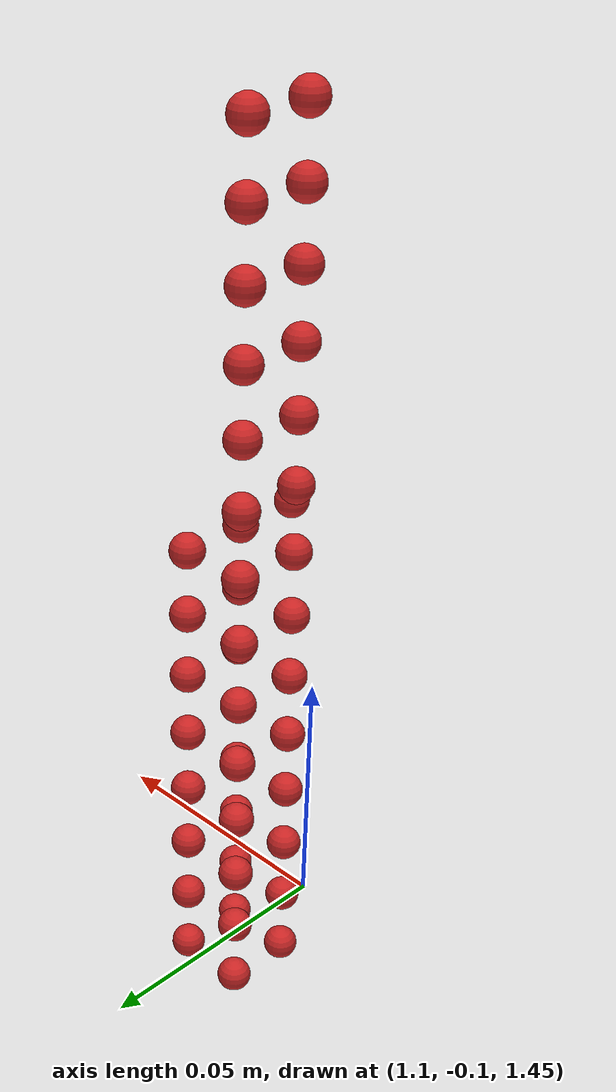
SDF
<sdf version="1.4">
 <world name="default">
  <model name="ground_plane">
   <static>1</static>
   <link name="link">
    <collision name="collision">
     <geometry><plane><normal>0 0 1</normal><size>100 100</size></plane></geometry>
     <surface><friction><ode><mu>100</mu><mu2>50</mu2></ode></friction></surface>
    </collision>
    <visual name="visual">
     <cast_shadows>0</cast_shadows>
     <geometry><plane><normal>0 0 1</normal><size>100 100</size></plane></geometry>
     <material>
      <script><uri>file://media/materials/scripts/gazebo.material</uri><name>Gazebo/Grey</name></script>
     </material>
    </visual>
    <velocity_decay><linear>0</linear><angular>0</angular></velocity_decay>
   </link>
  </model>
  <model name="sphere8">
   <pose>0.540760 -0.036781 0.732288 0 0 0</pose>
   <link name="link">
    <pose>0.540760 -0.036781 0.732288 0 0 0</pose>
    <inertial>
     <mass>0.001</mass>
     <inertia>
      <ixx>0.004</ixx>
      <ixy>0.000000</ixy>
      <ixz>0.000000</ixz>
      <iyy>0.004</iyy>
      <iyz>0.000000</iyz>
      <izz>0.004</izz>
     </inertia>
    </inertial>
    <collision name="collision">
     <surface>
      <contact><ode><kp>10000000000.000000</kp><kd>1</kd></ode></contact>
      <friction><ode><mu>0.01</mu><mu2>0.01</mu2></ode></friction>
     </surface>
     <geometry><sphere><radius>0.003</radius></sphere></geometry>
    </collision>
    <visual name="visual">
     <geometry><sphere><radius>0.003</radius></sphere></geometry>
     <material>
      <script><uri>file://media/materials/scripts/gazebo.material</uri><name>Gazebo/Red</name></script>
     </material>
    </visual>
   </link>
  </model>
  <model name="sphere9">
   <pose>0.546760 -0.036781 0.732288 0 0 0</pose>
   <link name="link">
    <pose>0.546760 -0.036781 0.732288 0 0 0</pose>
    <inertial>
     <mass>0.001</mass>
     <inertia>
      <ixx>0.004</ixx>
      <ixy>0.000000</ixy>
      <ixz>0.000000</ixz>
      <iyy>0.004</iyy>
      <iyz>0.000000</iyz>
      <izz>0.004</izz>
     </inertia>
    </inertial>
    <collision name="collision">
     <surface>
      <contact><ode><kp>10000000000.000000</kp><kd>1</kd></ode></contact>
      <friction><ode><mu>0.01</mu><mu2>0.01</mu2></ode></friction>
     </surface>
     <geometry><sphere><radius>0.003</radius></sphere></geometry>
    </collision>
    <visual name="visual">
     <geometry><sphere><radius>0.003</radius></sphere></geometry>
     <material>
      <script><uri>file://media/materials/scripts/gazebo.material</uri><name>Gazebo/Red</name></script>
     </material>
    </visual>
   </link>
  </model>
  <model name="sphere12">
   <pose>0.540760 -0.030781 0.732288 0 0 0</pose>
   <link name="link">
    <pose>0.540760 -0.030781 0.732288 0 0 0</pose>
    <inertial>
     <mass>0.001</mass>
     <inertia>
      <ixx>0.004</ixx>
      <ixy>0.000000</ixy>
      <ixz>0.000000</ixz>
      <iyy>0.004</iyy>
      <iyz>0.000000</iyz>
      <izz>0.004</izz>
     </inertia>
    </inertial>
    <collision name="collision">
     <surface>
      <contact><ode><kp>10000000000.000000</kp><kd>1</kd></ode></contact>
      <friction><ode><mu>0.01</mu><mu2>0.01</mu2></ode></friction>
     </surface>
     <geometry><sphere><radius>0.003</radius></sphere></geometry>
    </collision>
    <visual name="visual">
     <geometry><sphere><radius>0.003</radius></sphere></geometry>
     <material>
      <script><uri>file://media/materials/scripts/gazebo.material</uri><name>Gazebo/Red</name></script>
     </material>
    </visual>
   </link>
  </model>
  <model name="sphere13">
   <pose>0.546760 -0.030781 0.732288 0 0 0</pose>
   <link name="link">
    <pose>0.546760 -0.030781 0.732288 0 0 0</pose>
    <inertial>
     <mass>0.001</mass>
     <inertia>
      <ixx>0.004</ixx>
      <ixy>0.000000</ixy>
      <ixz>0.000000</ixz>
      <iyy>0.004</iyy>
      <iyz>0.000000</iyz>
      <izz>0.004</izz>
     </inertia>
    </inertial>
    <collision name="collision">
     <surface>
      <contact><ode><kp>10000000000.000000</kp><kd>1</kd></ode></contact>
      <friction><ode><mu>0.01</mu><mu2>0.01</mu2></ode></friction>
     </surface>
     <geometry><sphere><radius>0.003</radius></sphere></geometry>
    </collision>
    <visual name="visual">
     <geometry><sphere><radius>0.003</radius></sphere></geometry>
     <material>
      <script><uri>file://media/materials/scripts/gazebo.material</uri><name>Gazebo/Red</name></script>
     </material>
    </visual>
   </link>
  </model>
  <model name="sphere24">
   <pose>0.540760 -0.036781 0.738288 0 0 0</pose>
   <link name="link">
    <pose>0.540760 -0.036781 0.738288 0 0 0</pose>
    <inertial>
     <mass>0.001</mass>
     <inertia>
      <ixx>0.004</ixx>
      <ixy>0.000000</ixy>
      <ixz>0.000000</ixz>
      <iyy>0.004</iyy>
      <iyz>0.000000</iyz>
      <izz>0.004</izz>
     </inertia>
    </inertial>
    <collision name="collision">
     <surface>
      <contact><ode><kp>10000000000.000000</kp><kd>1</kd></ode></contact>
      <friction><ode><mu>0.01</mu><mu2>0.01</mu2></ode></friction>
     </surface>
     <geometry><sphere><radius>0.003</radius></sphere></geometry>
    </collision>
    <visual name="visual">
     <geometry><sphere><radius>0.003</radius></sphere></geometry>
     <material>
      <script><uri>file://media/materials/scripts/gazebo.material</uri><name>Gazebo/Red</name></script>
     </material>
    </visual>
   </link>
  </model>
  <model name="sphere25">
   <pose>0.546760 -0.036781 0.738288 0 0 0</pose>
   <link name="link">
    <pose>0.546760 -0.036781 0.738288 0 0 0</pose>
    <inertial>
     <mass>0.001</mass>
     <inertia>
      <ixx>0.004</ixx>
      <ixy>0.000000</ixy>
      <ixz>0.000000</ixz>
      <iyy>0.004</iyy>
      <iyz>0.000000</iyz>
      <izz>0.004</izz>
     </inertia>
    </inertial>
    <collision name="collision">
     <surface>
      <contact><ode><kp>10000000000.000000</kp><kd>1</kd></ode></contact>
      <friction><ode><mu>0.01</mu><mu2>0.01</mu2></ode></friction>
     </surface>
     <geometry><sphere><radius>0.003</radius></sphere></geometry>
    </collision>
    <visual name="visual">
     <geometry><sphere><radius>0.003</radius></sphere></geometry>
     <material>
      <script><uri>file://media/materials/scripts/gazebo.material</uri><name>Gazebo/Red</name></script>
     </material>
    </visual>
   </link>
  </model>
  <model name="sphere28">
   <pose>0.540760 -0.030781 0.738288 0 0 0</pose>
   <link name="link">
    <pose>0.540760 -0.030781 0.738288 0 0 0</pose>
    <inertial>
     <mass>0.001</mass>
     <inertia>
      <ixx>0.004</ixx>
      <ixy>0.000000</ixy>
      <ixz>0.000000</ixz>
      <iyy>0.004</iyy>
      <iyz>0.000000</iyz>
      <izz>0.004</izz>
     </inertia>
    </inertial>
    <collision name="collision">
     <surface>
      <contact><ode><kp>10000000000.000000</kp><kd>1</kd></ode></contact>
      <friction><ode><mu>0.01</mu><mu2>0.01</mu2></ode></friction>
     </surface>
     <geometry><sphere><radius>0.003</radius></sphere></geometry>
    </collision>
    <visual name="visual">
     <geometry><sphere><radius>0.003</radius></sphere></geometry>
     <material>
      <script><uri>file://media/materials/scripts/gazebo.material</uri><name>Gazebo/Red</name></script>
     </material>
    </visual>
   </link>
  </model>
  <model name="sphere29">
   <pose>0.546760 -0.030781 0.738288 0 0 0</pose>
   <link name="link">
    <pose>0.546760 -0.030781 0.738288 0 0 0</pose>
    <inertial>
     <mass>0.001</mass>
     <inertia>
      <ixx>0.004</ixx>
      <ixy>0.000000</ixy>
      <ixz>0.000000</ixz>
      <iyy>0.004</iyy>
      <iyz>0.000000</iyz>
      <izz>0.004</izz>
     </inertia>
    </inertial>
    <collision name="collision">
     <surface>
      <contact><ode><kp>10000000000.000000</kp><kd>1</kd></ode></contact>
      <friction><ode><mu>0.01</mu><mu2>0.01</mu2></ode></friction>
     </surface>
     <geometry><sphere><radius>0.003</radius></sphere></geometry>
    </collision>
    <visual name="visual">
     <geometry><sphere><radius>0.003</radius></sphere></geometry>
     <material>
      <script><uri>file://media/materials/scripts/gazebo.material</uri><name>Gazebo/Red</name></script>
     </material>
    </visual>
   </link>
  </model>
  <model name="sphere40">
   <pose>0.540760 -0.036781 0.744288 0 0 0</pose>
   <link name="link">
    <pose>0.540760 -0.036781 0.744288 0 0 0</pose>
    <inertial>
     <mass>0.001</mass>
     <inertia>
      <ixx>0.004</ixx>
      <ixy>0.000000</ixy>
      <ixz>0.000000</ixz>
      <iyy>0.004</iyy>
      <iyz>0.000000</iyz>
      <izz>0.004</izz>
     </inertia>
    </inertial>
    <collision name="collision">
     <surface>
      <contact><ode><kp>10000000000.000000</kp><kd>1</kd></ode></contact>
      <friction><ode><mu>0.01</mu><mu2>0.01</mu2></ode></friction>
     </surface>
     <geometry><sphere><radius>0.003</radius></sphere></geometry>
    </collision>
    <visual name="visual">
     <geometry><sphere><radius>0.003</radius></sphere></geometry>
     <material>
      <script><uri>file://media/materials/scripts/gazebo.material</uri><name>Gazebo/Red</name></script>
     </material>
    </visual>
   </link>
  </model>
  <model name="sphere41">
   <pose>0.546760 -0.036781 0.744288 0 0 0</pose>
   <link name="link">
    <pose>0.546760 -0.036781 0.744288 0 0 0</pose>
    <inertial>
     <mass>0.001</mass>
     <inertia>
      <ixx>0.004</ixx>
      <ixy>0.000000</ixy>
      <ixz>0.000000</ixz>
      <iyy>0.004</iyy>
      <iyz>0.000000</iyz>
      <izz>0.004</izz>
     </inertia>
    </inertial>
    <collision name="collision">
     <surface>
      <contact><ode><kp>10000000000.000000</kp><kd>1</kd></ode></contact>
      <friction><ode><mu>0.01</mu><mu2>0.01</mu2></ode></friction>
     </surface>
     <geometry><sphere><radius>0.003</radius></sphere></geometry>
    </collision>
    <visual name="visual">
     <geometry><sphere><radius>0.003</radius></sphere></geometry>
     <material>
      <script><uri>file://media/materials/scripts/gazebo.material</uri><name>Gazebo/Red</name></script>
     </material>
    </visual>
   </link>
  </model>
  <model name="sphere44">
   <pose>0.540760 -0.030781 0.744288 0 0 0</pose>
   <link name="link">
    <pose>0.540760 -0.030781 0.744288 0 0 0</pose>
    <inertial>
     <mass>0.001</mass>
     <inertia>
      <ixx>0.004</ixx>
      <ixy>0.000000</ixy>
      <ixz>0.000000</ixz>
      <iyy>0.004</iyy>
      <iyz>0.000000</iyz>
      <izz>0.004</izz>
     </inertia>
    </inertial>
    <collision name="collision">
     <surface>
      <contact><ode><kp>10000000000.000000</kp><kd>1</kd></ode></contact>
      <friction><ode><mu>0.01</mu><mu2>0.01</mu2></ode></friction>
     </surface>
     <geometry><sphere><radius>0.003</radius></sphere></geometry>
    </collision>
    <visual name="visual">
     <geometry><sphere><radius>0.003</radius></sphere></geometry>
     <material>
      <script><uri>file://media/materials/scripts/gazebo.material</uri><name>Gazebo/Red</name></script>
     </material>
    </visual>
   </link>
  </model>
  <model name="sphere45">
   <pose>0.546760 -0.030781 0.744288 0 0 0</pose>
   <link name="link">
    <pose>0.546760 -0.030781 0.744288 0 0 0</pose>
    <inertial>
     <mass>0.001</mass>
     <inertia>
      <ixx>0.004</ixx>
      <ixy>0.000000</ixy>
      <ixz>0.000000</ixz>
      <iyy>0.004</iyy>
      <iyz>0.000000</iyz>
      <izz>0.004</izz>
     </inertia>
    </inertial>
    <collision name="collision">
     <surface>
      <contact><ode><kp>10000000000.000000</kp><kd>1</kd></ode></contact>
      <friction><ode><mu>0.01</mu><mu2>0.01</mu2></ode></friction>
     </surface>
     <geometry><sphere><radius>0.003</radius></sphere></geometry>
    </collision>
    <visual name="visual">
     <geometry><sphere><radius>0.003</radius></sphere></geometry>
     <material>
      <script><uri>file://media/materials/scripts/gazebo.material</uri><name>Gazebo/Red</name></script>
     </material>
    </visual>
   </link>
  </model>
  <model name="sphere56">
   <pose>0.540760 -0.036781 0.750288 0 0 0</pose>
   <link name="link">
    <pose>0.540760 -0.036781 0.750288 0 0 0</pose>
    <inertial>
     <mass>0.001</mass>
     <inertia>
      <ixx>0.004</ixx>
      <ixy>0.000000</ixy>
      <ixz>0.000000</ixz>
      <iyy>0.004</iyy>
      <iyz>0.000000</iyz>
      <izz>0.004</izz>
     </inertia>
    </inertial>
    <collision name="collision">
     <surface>
      <contact><ode><kp>10000000000.000000</kp><kd>1</kd></ode></contact>
      <friction><ode><mu>0.01</mu><mu2>0.01</mu2></ode></friction>
     </surface>
     <geometry><sphere><radius>0.003</radius></sphere></geometry>
    </collision>
    <visual name="visual">
     <geometry><sphere><radius>0.003</radius></sphere></geometry>
     <material>
      <script><uri>file://media/materials/scripts/gazebo.material</uri><name>Gazebo/Red</name></script>
     </material>
    </visual>
   </link>
  </model>
  <model name="sphere57">
   <pose>0.546760 -0.036781 0.750288 0 0 0</pose>
   <link name="link">
    <pose>0.546760 -0.036781 0.750288 0 0 0</pose>
    <inertial>
     <mass>0.001</mass>
     <inertia>
      <ixx>0.004</ixx>
      <ixy>0.000000</ixy>
      <ixz>0.000000</ixz>
      <iyy>0.004</iyy>
      <iyz>0.000000</iyz>
      <izz>0.004</izz>
     </inertia>
    </inertial>
    <collision name="collision">
     <surface>
      <contact><ode><kp>10000000000.000000</kp><kd>1</kd></ode></contact>
      <friction><ode><mu>0.01</mu><mu2>0.01</mu2></ode></friction>
     </surface>
     <geometry><sphere><radius>0.003</radius></sphere></geometry>
    </collision>
    <visual name="visual">
     <geometry><sphere><radius>0.003</radius></sphere></geometry>
     <material>
      <script><uri>file://media/materials/scripts/gazebo.material</uri><name>Gazebo/Red</name></script>
     </material>
    </visual>
   </link>
  </model>
  <model name="sphere60">
   <pose>0.540760 -0.030781 0.750288 0 0 0</pose>
   <link name="link">
    <pose>0.540760 -0.030781 0.750288 0 0 0</pose>
    <inertial>
     <mass>0.001</mass>
     <inertia>
      <ixx>0.004</ixx>
      <ixy>0.000000</ixy>
      <ixz>0.000000</ixz>
      <iyy>0.004</iyy>
      <iyz>0.000000</iyz>
      <izz>0.004</izz>
     </inertia>
    </inertial>
    <collision name="collision">
     <surface>
      <contact><ode><kp>10000000000.000000</kp><kd>1</kd></ode></contact>
      <friction><ode><mu>0.01</mu><mu2>0.01</mu2></ode></friction>
     </surface>
     <geometry><sphere><radius>0.003</radius></sphere></geometry>
    </collision>
    <visual name="visual">
     <geometry><sphere><radius>0.003</radius></sphere></geometry>
     <material>
      <script><uri>file://media/materials/scripts/gazebo.material</uri><name>Gazebo/Red</name></script>
     </material>
    </visual>
   </link>
  </model>
  <model name="sphere61">
   <pose>0.546760 -0.030781 0.750288 0 0 0</pose>
   <link name="link">
    <pose>0.546760 -0.030781 0.750288 0 0 0</pose>
    <inertial>
     <mass>0.001</mass>
     <inertia>
      <ixx>0.004</ixx>
      <ixy>0.000000</ixy>
      <ixz>0.000000</ixz>
      <iyy>0.004</iyy>
      <iyz>0.000000</iyz>
      <izz>0.004</izz>
     </inertia>
    </inertial>
    <collision name="collision">
     <surface>
      <contact><ode><kp>10000000000.000000</kp><kd>1</kd></ode></contact>
      <friction><ode><mu>0.01</mu><mu2>0.01</mu2></ode></friction>
     </surface>
     <geometry><sphere><radius>0.003</radius></sphere></geometry>
    </collision>
    <visual name="visual">
     <geometry><sphere><radius>0.003</radius></sphere></geometry>
     <material>
      <script><uri>file://media/materials/scripts/gazebo.material</uri><name>Gazebo/Red</name></script>
     </material>
    </visual>
   </link>
  </model>
  <model name="sphere72">
   <pose>0.540760 -0.036781 0.756288 0 0 0</pose>
   <link name="link">
    <pose>0.540760 -0.036781 0.756288 0 0 0</pose>
    <inertial>
     <mass>0.001</mass>
     <inertia>
      <ixx>0.004</ixx>
      <ixy>0.000000</ixy>
      <ixz>0.000000</ixz>
      <iyy>0.004</iyy>
      <iyz>0.000000</iyz>
      <izz>0.004</izz>
     </inertia>
    </inertial>
    <collision name="collision">
     <surface>
      <contact><ode><kp>10000000000.000000</kp><kd>1</kd></ode></contact>
      <friction><ode><mu>0.01</mu><mu2>0.01</mu2></ode></friction>
     </surface>
     <geometry><sphere><radius>0.003</radius></sphere></geometry>
    </collision>
    <visual name="visual">
     <geometry><sphere><radius>0.003</radius></sphere></geometry>
     <material>
      <script><uri>file://media/materials/scripts/gazebo.material</uri><name>Gazebo/Red</name></script>
     </material>
    </visual>
   </link>
  </model>
  <model name="sphere73">
   <pose>0.546760 -0.036781 0.756288 0 0 0</pose>
   <link name="link">
    <pose>0.546760 -0.036781 0.756288 0 0 0</pose>
    <inertial>
     <mass>0.001</mass>
     <inertia>
      <ixx>0.004</ixx>
      <ixy>0.000000</ixy>
      <ixz>0.000000</ixz>
      <iyy>0.004</iyy>
      <iyz>0.000000</iyz>
      <izz>0.004</izz>
     </inertia>
    </inertial>
    <collision name="collision">
     <surface>
      <contact><ode><kp>10000000000.000000</kp><kd>1</kd></ode></contact>
      <friction><ode><mu>0.01</mu><mu2>0.01</mu2></ode></friction>
     </surface>
     <geometry><sphere><radius>0.003</radius></sphere></geometry>
    </collision>
    <visual name="visual">
     <geometry><sphere><radius>0.003</radius></sphere></geometry>
     <material>
      <script><uri>file://media/materials/scripts/gazebo.material</uri><name>Gazebo/Red</name></script>
     </material>
    </visual>
   </link>
  </model>
  <model name="sphere76">
   <pose>0.540760 -0.030781 0.756288 0 0 0</pose>
   <link name="link">
    <pose>0.540760 -0.030781 0.756288 0 0 0</pose>
    <inertial>
     <mass>0.001</mass>
     <inertia>
      <ixx>0.004</ixx>
      <ixy>0.000000</ixy>
      <ixz>0.000000</ixz>
      <iyy>0.004</iyy>
      <iyz>0.000000</iyz>
      <izz>0.004</izz>
     </inertia>
    </inertial>
    <collision name="collision">
     <surface>
      <contact><ode><kp>10000000000.000000</kp><kd>1</kd></ode></contact>
      <friction><ode><mu>0.01</mu><mu2>0.01</mu2></ode></friction>
     </surface>
     <geometry><sphere><radius>0.003</radius></sphere></geometry>
    </collision>
    <visual name="visual">
     <geometry><sphere><radius>0.003</radius></sphere></geometry>
     <material>
      <script><uri>file://media/materials/scripts/gazebo.material</uri><name>Gazebo/Red</name></script>
     </material>
    </visual>
   </link>
  </model>
  <model name="sphere77">
   <pose>0.546760 -0.030781 0.756288 0 0 0</pose>
   <link name="link">
    <pose>0.546760 -0.030781 0.756288 0 0 0</pose>
    <inertial>
     <mass>0.001</mass>
     <inertia>
      <ixx>0.004</ixx>
      <ixy>0.000000</ixy>
      <ixz>0.000000</ixz>
      <iyy>0.004</iyy>
      <iyz>0.000000</iyz>
      <izz>0.004</izz>
     </inertia>
    </inertial>
    <collision name="collision">
     <surface>
      <contact><ode><kp>10000000000.000000</kp><kd>1</kd></ode></contact>
      <friction><ode><mu>0.01</mu><mu2>0.01</mu2></ode></friction>
     </surface>
     <geometry><sphere><radius>0.003</radius></sphere></geometry>
    </collision>
    <visual name="visual">
     <geometry><sphere><radius>0.003</radius></sphere></geometry>
     <material>
      <script><uri>file://media/materials/scripts/gazebo.material</uri><name>Gazebo/Red</name></script>
     </material>
    </visual>
   </link>
  </model>
  <model name="sphere88">
   <pose>0.540760 -0.036781 0.762288 0 0 0</pose>
   <link name="link">
    <pose>0.540760 -0.036781 0.762288 0 0 0</pose>
    <inertial>
     <mass>0.001</mass>
     <inertia>
      <ixx>0.004</ixx>
      <ixy>0.000000</ixy>
      <ixz>0.000000</ixz>
      <iyy>0.004</iyy>
      <iyz>0.000000</iyz>
      <izz>0.004</izz>
     </inertia>
    </inertial>
    <collision name="collision">
     <surface>
      <contact><ode><kp>10000000000.000000</kp><kd>1</kd></ode></contact>
      <friction><ode><mu>0.01</mu><mu2>0.01</mu2></ode></friction>
     </surface>
     <geometry><sphere><radius>0.003</radius></sphere></geometry>
    </collision>
    <visual name="visual">
     <geometry><sphere><radius>0.003</radius></sphere></geometry>
     <material>
      <script><uri>file://media/materials/scripts/gazebo.material</uri><name>Gazebo/Red</name></script>
     </material>
    </visual>
   </link>
  </model>
  <model name="sphere89">
   <pose>0.546760 -0.036781 0.762288 0 0 0</pose>
   <link name="link">
    <pose>0.546760 -0.036781 0.762288 0 0 0</pose>
    <inertial>
     <mass>0.001</mass>
     <inertia>
      <ixx>0.004</ixx>
      <ixy>0.000000</ixy>
      <ixz>0.000000</ixz>
      <iyy>0.004</iyy>
      <iyz>0.000000</iyz>
      <izz>0.004</izz>
     </inertia>
    </inertial>
    <collision name="collision">
     <surface>
      <contact><ode><kp>10000000000.000000</kp><kd>1</kd></ode></contact>
      <friction><ode><mu>0.01</mu><mu2>0.01</mu2></ode></friction>
     </surface>
     <geometry><sphere><radius>0.003</radius></sphere></geometry>
    </collision>
    <visual name="visual">
     <geometry><sphere><radius>0.003</radius></sphere></geometry>
     <material>
      <script><uri>file://media/materials/scripts/gazebo.material</uri><name>Gazebo/Red</name></script>
     </material>
    </visual>
   </link>
  </model>
  <model name="sphere92">
   <pose>0.540760 -0.030781 0.762288 0 0 0</pose>
   <link name="link">
    <pose>0.540760 -0.030781 0.762288 0 0 0</pose>
    <inertial>
     <mass>0.001</mass>
     <inertia>
      <ixx>0.004</ixx>
      <ixy>0.000000</ixy>
      <ixz>0.000000</ixz>
      <iyy>0.004</iyy>
      <iyz>0.000000</iyz>
      <izz>0.004</izz>
     </inertia>
    </inertial>
    <collision name="collision">
     <surface>
      <contact><ode><kp>10000000000.000000</kp><kd>1</kd></ode></contact>
      <friction><ode><mu>0.01</mu><mu2>0.01</mu2></ode></friction>
     </surface>
     <geometry><sphere><radius>0.003</radius></sphere></geometry>
    </collision>
    <visual name="visual">
     <geometry><sphere><radius>0.003</radius></sphere></geometry>
     <material>
      <script><uri>file://media/materials/scripts/gazebo.material</uri><name>Gazebo/Red</name></script>
     </material>
    </visual>
   </link>
  </model>
  <model name="sphere93">
   <pose>0.546760 -0.030781 0.762288 0 0 0</pose>
   <link name="link">
    <pose>0.546760 -0.030781 0.762288 0 0 0</pose>
    <inertial>
     <mass>0.001</mass>
     <inertia>
      <ixx>0.004</ixx>
      <ixy>0.000000</ixy>
      <ixz>0.000000</ixz>
      <iyy>0.004</iyy>
      <iyz>0.000000</iyz>
      <izz>0.004</izz>
     </inertia>
    </inertial>
    <collision name="collision">
     <surface>
      <contact><ode><kp>10000000000.000000</kp><kd>1</kd></ode></contact>
      <friction><ode><mu>0.01</mu><mu2>0.01</mu2></ode></friction>
     </surface>
     <geometry><sphere><radius>0.003</radius></sphere></geometry>
    </collision>
    <visual name="visual">
     <geometry><sphere><radius>0.003</radius></sphere></geometry>
     <material>
      <script><uri>file://media/materials/scripts/gazebo.material</uri><name>Gazebo/Red</name></script>
     </material>
    </visual>
   </link>
  </model>
  <model name="sphere104">
   <pose>0.540760 -0.036781 0.768288 0 0 0</pose>
   <link name="link">
    <pose>0.540760 -0.036781 0.768288 0 0 0</pose>
    <inertial>
     <mass>0.001</mass>
     <inertia>
      <ixx>0.004</ixx>
      <ixy>0.000000</ixy>
      <ixz>0.000000</ixz>
      <iyy>0.004</iyy>
      <iyz>0.000000</iyz>
      <izz>0.004</izz>
     </inertia>
    </inertial>
    <collision name="collision">
     <surface>
      <contact><ode><kp>10000000000.000000</kp><kd>1</kd></ode></contact>
      <friction><ode><mu>0.01</mu><mu2>0.01</mu2></ode></friction>
     </surface>
     <geometry><sphere><radius>0.003</radius></sphere></geometry>
    </collision>
    <visual name="visual">
     <geometry><sphere><radius>0.003</radius></sphere></geometry>
     <material>
      <script><uri>file://media/materials/scripts/gazebo.material</uri><name>Gazebo/Red</name></script>
     </material>
    </visual>
   </link>
  </model>
  <model name="sphere105">
   <pose>0.546760 -0.036781 0.768288 0 0 0</pose>
   <link name="link">
    <pose>0.546760 -0.036781 0.768288 0 0 0</pose>
    <inertial>
     <mass>0.001</mass>
     <inertia>
      <ixx>0.004</ixx>
      <ixy>0.000000</ixy>
      <ixz>0.000000</ixz>
      <iyy>0.004</iyy>
      <iyz>0.000000</iyz>
      <izz>0.004</izz>
     </inertia>
    </inertial>
    <collision name="collision">
     <surface>
      <contact><ode><kp>10000000000.000000</kp><kd>1</kd></ode></contact>
      <friction><ode><mu>0.01</mu><mu2>0.01</mu2></ode></friction>
     </surface>
     <geometry><sphere><radius>0.003</radius></sphere></geometry>
    </collision>
    <visual name="visual">
     <geometry><sphere><radius>0.003</radius></sphere></geometry>
     <material>
      <script><uri>file://media/materials/scripts/gazebo.material</uri><name>Gazebo/Red</name></script>
     </material>
    </visual>
   </link>
  </model>
  <model name="sphere108">
   <pose>0.540760 -0.030781 0.768288 0 0 0</pose>
   <link name="link">
    <pose>0.540760 -0.030781 0.768288 0 0 0</pose>
    <inertial>
     <mass>0.001</mass>
     <inertia>
      <ixx>0.004</ixx>
      <ixy>0.000000</ixy>
      <ixz>0.000000</ixz>
      <iyy>0.004</iyy>
      <iyz>0.000000</iyz>
      <izz>0.004</izz>
     </inertia>
    </inertial>
    <collision name="collision">
     <surface>
      <contact><ode><kp>10000000000.000000</kp><kd>1</kd></ode></contact>
      <friction><ode><mu>0.01</mu><mu2>0.01</mu2></ode></friction>
     </surface>
     <geometry><sphere><radius>0.003</radius></sphere></geometry>
    </collision>
    <visual name="visual">
     <geometry><sphere><radius>0.003</radius></sphere></geometry>
     <material>
      <script><uri>file://media/materials/scripts/gazebo.material</uri><name>Gazebo/Red</name></script>
     </material>
    </visual>
   </link>
  </model>
  <model name="sphere109">
   <pose>0.546760 -0.030781 0.768288 0 0 0</pose>
   <link name="link">
    <pose>0.546760 -0.030781 0.768288 0 0 0</pose>
    <inertial>
     <mass>0.001</mass>
     <inertia>
      <ixx>0.004</ixx>
      <ixy>0.000000</ixy>
      <ixz>0.000000</ixz>
      <iyy>0.004</iyy>
      <iyz>0.000000</iyz>
      <izz>0.004</izz>
     </inertia>
    </inertial>
    <collision name="collision">
     <surface>
      <contact><ode><kp>10000000000.000000</kp><kd>1</kd></ode></contact>
      <friction><ode><mu>0.01</mu><mu2>0.01</mu2></ode></friction>
     </surface>
     <geometry><sphere><radius>0.003</radius></sphere></geometry>
    </collision>
    <visual name="visual">
     <geometry><sphere><radius>0.003</radius></sphere></geometry>
     <material>
      <script><uri>file://media/materials/scripts/gazebo.material</uri><name>Gazebo/Red</name></script>
     </material>
    </visual>
   </link>
  </model>
  <model name="sphere117">
   <pose>0.546760 -0.042781 0.774288 0 0 0</pose>
   <link name="link">
    <pose>0.546760 -0.042781 0.774288 0 0 0</pose>
    <inertial>
     <mass>0.001</mass>
     <inertia>
      <ixx>0.004</ixx>
      <ixy>0.000000</ixy>
      <ixz>0.000000</ixz>
      <iyy>0.004</iyy>
      <iyz>0.000000</iyz>
      <izz>0.004</izz>
     </inertia>
    </inertial>
    <collision name="collision">
     <surface>
      <contact><ode><kp>10000000000.000000</kp><kd>1</kd></ode></contact>
      <friction><ode><mu>0.01</mu><mu2>0.01</mu2></ode></friction>
     </surface>
     <geometry><sphere><radius>0.003</radius></sphere></geometry>
    </collision>
    <visual name="visual">
     <geometry><sphere><radius>0.003</radius></sphere></geometry>
     <material>
      <script><uri>file://media/materials/scripts/gazebo.material</uri><name>Gazebo/Red</name></script>
     </material>
    </visual>
   </link>
  </model>
  <model name="sphere120">
   <pose>0.540760 -0.036781 0.774288 0 0 0</pose>
   <link name="link">
    <pose>0.540760 -0.036781 0.774288 0 0 0</pose>
    <inertial>
     <mass>0.001</mass>
     <inertia>
      <ixx>0.004</ixx>
      <ixy>0.000000</ixy>
      <ixz>0.000000</ixz>
      <iyy>0.004</iyy>
      <iyz>0.000000</iyz>
      <izz>0.004</izz>
     </inertia>
    </inertial>
    <collision name="collision">
     <surface>
      <contact><ode><kp>10000000000.000000</kp><kd>1</kd></ode></contact>
      <friction><ode><mu>0.01</mu><mu2>0.01</mu2></ode></friction>
     </surface>
     <geometry><sphere><radius>0.003</radius></sphere></geometry>
    </collision>
    <visual name="visual">
     <geometry><sphere><radius>0.003</radius></sphere></geometry>
     <material>
      <script><uri>file://media/materials/scripts/gazebo.material</uri><name>Gazebo/Red</name></script>
     </material>
    </visual>
   </link>
  </model>
  <model name="sphere121">
   <pose>0.546760 -0.036781 0.774288 0 0 0</pose>
   <link name="link">
    <pose>0.546760 -0.036781 0.774288 0 0 0</pose>
    <inertial>
     <mass>0.001</mass>
     <inertia>
      <ixx>0.004</ixx>
      <ixy>0.000000</ixy>
      <ixz>0.000000</ixz>
      <iyy>0.004</iyy>
      <iyz>0.000000</iyz>
      <izz>0.004</izz>
     </inertia>
    </inertial>
    <collision name="collision">
     <surface>
      <contact><ode><kp>10000000000.000000</kp><kd>1</kd></ode></contact>
      <friction><ode><mu>0.01</mu><mu2>0.01</mu2></ode></friction>
     </surface>
     <geometry><sphere><radius>0.003</radius></sphere></geometry>
    </collision>
    <visual name="visual">
     <geometry><sphere><radius>0.003</radius></sphere></geometry>
     <material>
      <script><uri>file://media/materials/scripts/gazebo.material</uri><name>Gazebo/Red</name></script>
     </material>
    </visual>
   </link>
  </model>
  <model name="sphere124">
   <pose>0.540760 -0.030781 0.774288 0 0 0</pose>
   <link name="link">
    <pose>0.540760 -0.030781 0.774288 0 0 0</pose>
    <inertial>
     <mass>0.001</mass>
     <inertia>
      <ixx>0.004</ixx>
      <ixy>0.000000</ixy>
      <ixz>0.000000</ixz>
      <iyy>0.004</iyy>
      <iyz>0.000000</iyz>
      <izz>0.004</izz>
     </inertia>
    </inertial>
    <collision name="collision">
     <surface>
      <contact><ode><kp>10000000000.000000</kp><kd>1</kd></ode></contact>
      <friction><ode><mu>0.01</mu><mu2>0.01</mu2></ode></friction>
     </surface>
     <geometry><sphere><radius>0.003</radius></sphere></geometry>
    </collision>
    <visual name="visual">
     <geometry><sphere><radius>0.003</radius></sphere></geometry>
     <material>
      <script><uri>file://media/materials/scripts/gazebo.material</uri><name>Gazebo/Red</name></script>
     </material>
    </visual>
   </link>
  </model>
  <model name="sphere125">
   <pose>0.546760 -0.030781 0.774288 0 0 0</pose>
   <link name="link">
    <pose>0.546760 -0.030781 0.774288 0 0 0</pose>
    <inertial>
     <mass>0.001</mass>
     <inertia>
      <ixx>0.004</ixx>
      <ixy>0.000000</ixy>
      <ixz>0.000000</ixz>
      <iyy>0.004</iyy>
      <iyz>0.000000</iyz>
      <izz>0.004</izz>
     </inertia>
    </inertial>
    <collision name="collision">
     <surface>
      <contact><ode><kp>10000000000.000000</kp><kd>1</kd></ode></contact>
      <friction><ode><mu>0.01</mu><mu2>0.01</mu2></ode></friction>
     </surface>
     <geometry><sphere><radius>0.003</radius></sphere></geometry>
    </collision>
    <visual name="visual">
     <geometry><sphere><radius>0.003</radius></sphere></geometry>
     <material>
      <script><uri>file://media/materials/scripts/gazebo.material</uri><name>Gazebo/Red</name></script>
     </material>
    </visual>
   </link>
  </model>
  <model name="sphere136">
   <pose>0.540760 -0.036781 0.780288 0 0 0</pose>
   <link name="link">
    <pose>0.540760 -0.036781 0.780288 0 0 0</pose>
    <inertial>
     <mass>0.001</mass>
     <inertia>
      <ixx>0.004</ixx>
      <ixy>0.000000</ixy>
      <ixz>0.000000</ixz>
      <iyy>0.004</iyy>
      <iyz>0.000000</iyz>
      <izz>0.004</izz>
     </inertia>
    </inertial>
    <collision name="collision">
     <surface>
      <contact><ode><kp>10000000000.000000</kp><kd>1</kd></ode></contact>
      <friction><ode><mu>0.01</mu><mu2>0.01</mu2></ode></friction>
     </surface>
     <geometry><sphere><radius>0.003</radius></sphere></geometry>
    </collision>
    <visual name="visual">
     <geometry><sphere><radius>0.003</radius></sphere></geometry>
     <material>
      <script><uri>file://media/materials/scripts/gazebo.material</uri><name>Gazebo/Red</name></script>
     </material>
    </visual>
   </link>
  </model>
  <model name="sphere140">
   <pose>0.540760 -0.030781 0.780288 0 0 0</pose>
   <link name="link">
    <pose>0.540760 -0.030781 0.780288 0 0 0</pose>
    <inertial>
     <mass>0.001</mass>
     <inertia>
      <ixx>0.004</ixx>
      <ixy>0.000000</ixy>
      <ixz>0.000000</ixz>
      <iyy>0.004</iyy>
      <iyz>0.000000</iyz>
      <izz>0.004</izz>
     </inertia>
    </inertial>
    <collision name="collision">
     <surface>
      <contact><ode><kp>10000000000.000000</kp><kd>1</kd></ode></contact>
      <friction><ode><mu>0.01</mu><mu2>0.01</mu2></ode></friction>
     </surface>
     <geometry><sphere><radius>0.003</radius></sphere></geometry>
    </collision>
    <visual name="visual">
     <geometry><sphere><radius>0.003</radius></sphere></geometry>
     <material>
      <script><uri>file://media/materials/scripts/gazebo.material</uri><name>Gazebo/Red</name></script>
     </material>
    </visual>
   </link>
  </model>
  <model name="sphere152">
   <pose>0.540760 -0.036781 0.786288 0 0 0</pose>
   <link name="link">
    <pose>0.540760 -0.036781 0.786288 0 0 0</pose>
    <inertial>
     <mass>0.001</mass>
     <inertia>
      <ixx>0.004</ixx>
      <ixy>0.000000</ixy>
      <ixz>0.000000</ixz>
      <iyy>0.004</iyy>
      <iyz>0.000000</iyz>
      <izz>0.004</izz>
     </inertia>
    </inertial>
    <collision name="collision">
     <surface>
      <contact><ode><kp>10000000000.000000</kp><kd>1</kd></ode></contact>
      <friction><ode><mu>0.01</mu><mu2>0.01</mu2></ode></friction>
     </surface>
     <geometry><sphere><radius>0.003</radius></sphere></geometry>
    </collision>
    <visual name="visual">
     <geometry><sphere><radius>0.003</radius></sphere></geometry>
     <material>
      <script><uri>file://media/materials/scripts/gazebo.material</uri><name>Gazebo/Red</name></script>
     </material>
    </visual>
   </link>
  </model>
  <model name="sphere156">
   <pose>0.540760 -0.030781 0.786288 0 0 0</pose>
   <link name="link">
    <pose>0.540760 -0.030781 0.786288 0 0 0</pose>
    <inertial>
     <mass>0.001</mass>
     <inertia>
      <ixx>0.004</ixx>
      <ixy>0.000000</ixy>
      <ixz>0.000000</ixz>
      <iyy>0.004</iyy>
      <iyz>0.000000</iyz>
      <izz>0.004</izz>
     </inertia>
    </inertial>
    <collision name="collision">
     <surface>
      <contact><ode><kp>10000000000.000000</kp><kd>1</kd></ode></contact>
      <friction><ode><mu>0.01</mu><mu2>0.01</mu2></ode></friction>
     </surface>
     <geometry><sphere><radius>0.003</radius></sphere></geometry>
    </collision>
    <visual name="visual">
     <geometry><sphere><radius>0.003</radius></sphere></geometry>
     <material>
      <script><uri>file://media/materials/scripts/gazebo.material</uri><name>Gazebo/Red</name></script>
     </material>
    </visual>
   </link>
  </model>
  <model name="sphere168">
   <pose>0.540760 -0.036781 0.792288 0 0 0</pose>
   <link name="link">
    <pose>0.540760 -0.036781 0.792288 0 0 0</pose>
    <inertial>
     <mass>0.001</mass>
     <inertia>
      <ixx>0.004</ixx>
      <ixy>0.000000</ixy>
      <ixz>0.000000</ixz>
      <iyy>0.004</iyy>
      <iyz>0.000000</iyz>
      <izz>0.004</izz>
     </inertia>
    </inertial>
    <collision name="collision">
     <surface>
      <contact><ode><kp>10000000000.000000</kp><kd>1</kd></ode></contact>
      <friction><ode><mu>0.01</mu><mu2>0.01</mu2></ode></friction>
     </surface>
     <geometry><sphere><radius>0.003</radius></sphere></geometry>
    </collision>
    <visual name="visual">
     <geometry><sphere><radius>0.003</radius></sphere></geometry>
     <material>
      <script><uri>file://media/materials/scripts/gazebo.material</uri><name>Gazebo/Red</name></script>
     </material>
    </visual>
   </link>
  </model>
  <model name="sphere172">
   <pose>0.540760 -0.030781 0.792288 0 0 0</pose>
   <link name="link">
    <pose>0.540760 -0.030781 0.792288 0 0 0</pose>
    <inertial>
     <mass>0.001</mass>
     <inertia>
      <ixx>0.004</ixx>
      <ixy>0.000000</ixy>
      <ixz>0.000000</ixz>
      <iyy>0.004</iyy>
      <iyz>0.000000</iyz>
      <izz>0.004</izz>
     </inertia>
    </inertial>
    <collision name="collision">
     <surface>
      <contact><ode><kp>10000000000.000000</kp><kd>1</kd></ode></contact>
      <friction><ode><mu>0.01</mu><mu2>0.01</mu2></ode></friction>
     </surface>
     <geometry><sphere><radius>0.003</radius></sphere></geometry>
    </collision>
    <visual name="visual">
     <geometry><sphere><radius>0.003</radius></sphere></geometry>
     <material>
      <script><uri>file://media/materials/scripts/gazebo.material</uri><name>Gazebo/Red</name></script>
     </material>
    </visual>
   </link>
  </model>
  <model name="sphere184">
   <pose>0.540760 -0.036781 0.798288 0 0 0</pose>
   <link name="link">
    <pose>0.540760 -0.036781 0.798288 0 0 0</pose>
    <inertial>
     <mass>0.001</mass>
     <inertia>
      <ixx>0.004</ixx>
      <ixy>0.000000</ixy>
      <ixz>0.000000</ixz>
      <iyy>0.004</iyy>
      <iyz>0.000000</iyz>
      <izz>0.004</izz>
     </inertia>
    </inertial>
    <collision name="collision">
     <surface>
      <contact><ode><kp>10000000000.000000</kp><kd>1</kd></ode></contact>
      <friction><ode><mu>0.01</mu><mu2>0.01</mu2></ode></friction>
     </surface>
     <geometry><sphere><radius>0.003</radius></sphere></geometry>
    </collision>
    <visual name="visual">
     <geometry><sphere><radius>0.003</radius></sphere></geometry>
     <material>
      <script><uri>file://media/materials/scripts/gazebo.material</uri><name>Gazebo/Red</name></script>
     </material>
    </visual>
   </link>
  </model>
  <model name="sphere188">
   <pose>0.540760 -0.030781 0.798288 0 0 0</pose>
   <link name="link">
    <pose>0.540760 -0.030781 0.798288 0 0 0</pose>
    <inertial>
     <mass>0.001</mass>
     <inertia>
      <ixx>0.004</ixx>
      <ixy>0.000000</ixy>
      <ixz>0.000000</ixz>
      <iyy>0.004</iyy>
      <iyz>0.000000</iyz>
      <izz>0.004</izz>
     </inertia>
    </inertial>
    <collision name="collision">
     <surface>
      <contact><ode><kp>10000000000.000000</kp><kd>1</kd></ode></contact>
      <friction><ode><mu>0.01</mu><mu2>0.01</mu2></ode></friction>
     </surface>
     <geometry><sphere><radius>0.003</radius></sphere></geometry>
    </collision>
    <visual name="visual">
     <geometry><sphere><radius>0.003</radius></sphere></geometry>
     <material>
      <script><uri>file://media/materials/scripts/gazebo.material</uri><name>Gazebo/Red</name></script>
     </material>
    </visual>
   </link>
  </model>
  <model name="sphere200">
   <pose>0.540760 -0.036781 0.804288 0 0 0</pose>
   <link name="link">
    <pose>0.540760 -0.036781 0.804288 0 0 0</pose>
    <inertial>
     <mass>0.001</mass>
     <inertia>
      <ixx>0.004</ixx>
      <ixy>0.000000</ixy>
      <ixz>0.000000</ixz>
      <iyy>0.004</iyy>
      <iyz>0.000000</iyz>
      <izz>0.004</izz>
     </inertia>
    </inertial>
    <collision name="collision">
     <surface>
      <contact><ode><kp>10000000000.000000</kp><kd>1</kd></ode></contact>
      <friction><ode><mu>0.01</mu><mu2>0.01</mu2></ode></friction>
     </surface>
     <geometry><sphere><radius>0.003</radius></sphere></geometry>
    </collision>
    <visual name="visual">
     <geometry><sphere><radius>0.003</radius></sphere></geometry>
     <material>
      <script><uri>file://media/materials/scripts/gazebo.material</uri><name>Gazebo/Red</name></script>
     </material>
    </visual>
   </link>
  </model>
  <model name="sphere204">
   <pose>0.540760 -0.030781 0.804288 0 0 0</pose>
   <link name="link">
    <pose>0.540760 -0.030781 0.804288 0 0 0</pose>
    <inertial>
     <mass>0.001</mass>
     <inertia>
      <ixx>0.004</ixx>
      <ixy>0.000000</ixy>
      <ixz>0.000000</ixz>
      <iyy>0.004</iyy>
      <iyz>0.000000</iyz>
      <izz>0.004</izz>
     </inertia>
    </inertial>
    <collision name="collision">
     <surface>
      <contact><ode><kp>10000000000.000000</kp><kd>1</kd></ode></contact>
      <friction><ode><mu>0.01</mu><mu2>0.01</mu2></ode></friction>
     </surface>
     <geometry><sphere><radius>0.003</radius></sphere></geometry>
    </collision>
    <visual name="visual">
     <geometry><sphere><radius>0.003</radius></sphere></geometry>
     <material>
      <script><uri>file://media/materials/scripts/gazebo.material</uri><name>Gazebo/Red</name></script>
     </material>
    </visual>
   </link>
  </model>
  <model name="sphere216">
   <pose>0.540760 -0.036781 0.810288 0 0 0</pose>
   <link name="link">
    <pose>0.540760 -0.036781 0.810288 0 0 0</pose>
    <inertial>
     <mass>0.001</mass>
     <inertia>
      <ixx>0.004</ixx>
      <ixy>0.000000</ixy>
      <ixz>0.000000</ixz>
      <iyy>0.004</iyy>
      <iyz>0.000000</iyz>
      <izz>0.004</izz>
     </inertia>
    </inertial>
    <collision name="collision">
     <surface>
      <contact><ode><kp>10000000000.000000</kp><kd>1</kd></ode></contact>
      <friction><ode><mu>0.01</mu><mu2>0.01</mu2></ode></friction>
     </surface>
     <geometry><sphere><radius>0.003</radius></sphere></geometry>
    </collision>
    <visual name="visual">
     <geometry><sphere><radius>0.003</radius></sphere></geometry>
     <material>
      <script><uri>file://media/materials/scripts/gazebo.material</uri><name>Gazebo/Red</name></script>
     </material>
    </visual>
   </link>
  </model>
  <model name="sphere220">
   <pose>0.540760 -0.030781 0.810288 0 0 0</pose>
   <link name="link">
    <pose>0.540760 -0.030781 0.810288 0 0 0</pose>
    <inertial>
     <mass>0.001</mass>
     <inertia>
      <ixx>0.004</ixx>
      <ixy>0.000000</ixy>
      <ixz>0.000000</ixz>
      <iyy>0.004</iyy>
      <iyz>0.000000</iyz>
      <izz>0.004</izz>
     </inertia>
    </inertial>
    <collision name="collision">
     <surface>
      <contact><ode><kp>10000000000.000000</kp><kd>1</kd></ode></contact>
      <friction><ode><mu>0.01</mu><mu2>0.01</mu2></ode></friction>
     </surface>
     <geometry><sphere><radius>0.003</radius></sphere></geometry>
    </collision>
    <visual name="visual">
     <geometry><sphere><radius>0.003</radius></sphere></geometry>
     <material>
      <script><uri>file://media/materials/scripts/gazebo.material</uri><name>Gazebo/Red</name></script>
     </material>
    </visual>
   </link>
  </model>
 </world>
</sdf>
